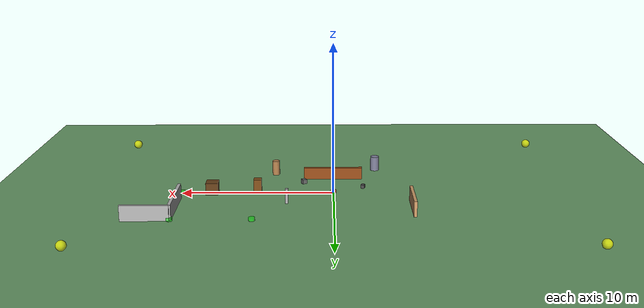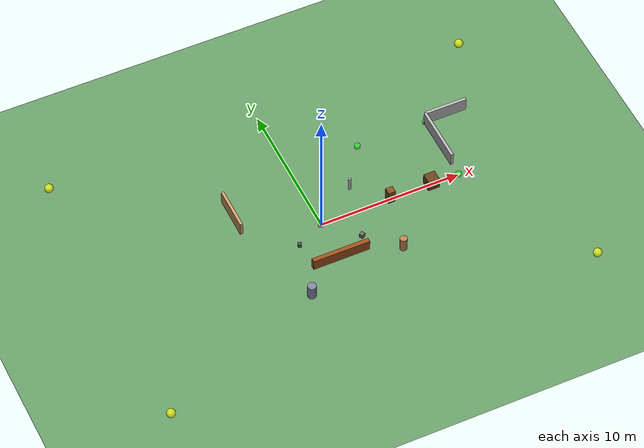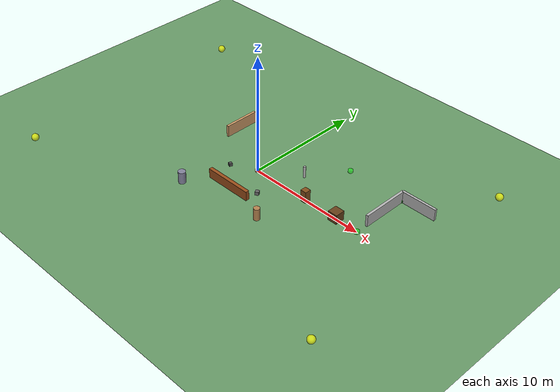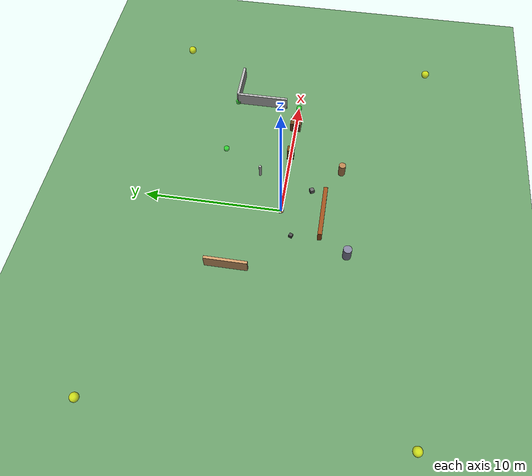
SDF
<?xml version="1.0" ?>
<sdf version="1.9">
  <world name="test_yard">

    <!-- Physics -->
    <physics name="1ms" type="ignored">
      <max_step_size>0.001</max_step_size>
      <real_time_factor>1</real_time_factor>
    </physics>

    <!-- Gazebo Harmonic plugins -->
    <plugin filename="gz-sim-physics-system" name="gz::sim::systems::Physics"/>
    <plugin filename="gz-sim-user-commands-system" name="gz::sim::systems::UserCommands"/>
    <plugin filename="gz-sim-scene-broadcaster-system" name="gz::sim::systems::SceneBroadcaster"/>
    <plugin filename="gz-sim-sensors-system" name="gz::sim::systems::Sensors">
      <render_engine>ogre</render_engine>
    </plugin>
    <plugin filename="gz-sim-imu-system" name="gz::sim::systems::Imu"/>
    <plugin filename="gz-sim-contact-system" name="gz::sim::systems::Contact"/>

    <!-- Lighting -->
    <light type="directional" name="sun">
      <cast_shadows>true</cast_shadows>
      <pose>0 0 10 0 0 0</pose>
      <diffuse>0.8 0.8 0.8 1</diffuse>
      <specular>0.2 0.2 0.2 1</specular>
      <attenuation>
        <range>1000</range>
        <constant>0.9</constant>
        <linear>0.01</linear>
        <quadratic>0.001</quadratic>
      </attenuation>
      <direction>-0.5 0.1 -0.9</direction>
    </light>

    <!-- Ground plane (grass texture) -->
    <model name="ground_plane">
      <static>true</static>
      <link name="link">
        <collision name="collision">
          <geometry>
            <plane>
              <normal>0 0 1</normal>
              <size>100 100</size>
            </plane>
          </geometry>
          <surface>
            <friction>
              <ode>
                <mu>0.8</mu>
                <mu2>0.8</mu2>
              </ode>
            </friction>
          </surface>
        </collision>
        <visual name="visual">
          <cast_shadows>false</cast_shadows>
          <geometry>
            <plane>
              <normal>0 0 1</normal>
              <size>100 100</size>
            </plane>
          </geometry>
          <material>
            <ambient>0.3 0.5 0.3 1</ambient>
            <diffuse>0.4 0.6 0.4 1</diffuse>
            <specular>0.1 0.1 0.1 1</specular>
          </material>
        </visual>
      </link>
    </model>

    <!-- Test obstacles for LiDAR and ultrasonic sensors -->

    <!-- Obstacle 1: Large box (simulating tree or large object) -->
    <model name="obstacle_tree">
      <pose>5 0 0.5 0 0 0</pose>
      <static>true</static>
      <link name="link">
        <collision name="collision">
          <geometry>
            <box>
              <size>0.5 0.5 1.0</size>
            </box>
          </geometry>
        </collision>
        <visual name="visual">
          <geometry>
            <box>
              <size>0.5 0.5 1.0</size>
            </box>
          </geometry>
          <material>
            <ambient>0.5 0.3 0.1 1</ambient>
            <diffuse>0.5 0.3 0.1 1</diffuse>
          </material>
        </visual>
      </link>
    </model>

    <!-- Obstacle 2: Narrow post (challenging for sensors) -->
    <model name="obstacle_post">
      <pose>3 2 0.5 0 0 0</pose>
      <static>true</static>
      <link name="link">
        <collision name="collision">
          <geometry>
            <cylinder>
              <radius>0.1</radius>
              <length>1.0</length>
            </cylinder>
          </geometry>
        </collision>
        <visual name="visual">
          <geometry>
            <cylinder>
              <radius>0.1</radius>
              <length>1.0</length>
            </cylinder>
          </geometry>
          <material>
            <ambient>0.7 0.7 0.7 1</ambient>
            <diffuse>0.7 0.7 0.7 1</diffuse>
          </material>
        </visual>
      </link>
    </model>

    <!-- Obstacle 3: Tall barrier wall (LiDAR detectable) -->
    <model name="obstacle_barrier">
      <pose>0 -3 0.4 0 0 0</pose>
      <static>true</static>
      <link name="link">
        <collision name="collision">
          <geometry>
            <box>
              <size>4.0 0.3 0.8</size>
            </box>
          </geometry>
        </collision>
        <visual name="visual">
          <geometry>
            <box>
              <size>4.0 0.3 0.8</size>
            </box>
          </geometry>
          <material>
            <ambient>0.6 0.3 0.1 1</ambient>
            <diffuse>0.6 0.3 0.1 1</diffuse>
          </material>
        </visual>
      </link>
    </model>

    <!-- Obstacle 3b: Additional tall pillar -->
    <model name="obstacle_pillar1">
      <pose>4 -4 0.5 0 0 0</pose>
      <static>true</static>
      <link name="link">
        <collision name="collision">
          <geometry>
            <cylinder>
              <radius>0.25</radius>
              <length>1.0</length>
            </cylinder>
          </geometry>
        </collision>
        <visual name="visual">
          <geometry>
            <cylinder>
              <radius>0.25</radius>
              <length>1.0</length>
            </cylinder>
          </geometry>
          <material>
            <ambient>0.7 0.5 0.3 1</ambient>
            <diffuse>0.7 0.5 0.3 1</diffuse>
          </material>
        </visual>
      </link>
    </model>

    <!-- Obstacle 3c: Another tall pillar -->
    <model name="obstacle_pillar2">
      <pose>-3 -5 0.5 0 0 0</pose>
      <static>true</static>
      <link name="link">
        <collision name="collision">
          <geometry>
            <cylinder>
              <radius>0.3</radius>
              <length>1.0</length>
            </cylinder>
          </geometry>
        </collision>
        <visual name="visual">
          <geometry>
            <cylinder>
              <radius>0.3</radius>
              <length>1.0</length>
            </cylinder>
          </geometry>
          <material>
            <ambient>0.5 0.5 0.6 1</ambient>
            <diffuse>0.5 0.5 0.6 1</diffuse>
          </material>
        </visual>
      </link>
    </model>

    <!-- Obstacle 4: Wall section (simulating fence or building) -->
    <model name="obstacle_wall">
      <pose>-5 3 0.5 0 0 0</pose>
      <static>true</static>
      <link name="link">
        <collision name="collision">
          <geometry>
            <box>
              <size>0.2 3.0 1.0</size>
            </box>
          </geometry>
        </collision>
        <visual name="visual">
          <geometry>
            <box>
              <size>0.2 3.0 1.0</size>
            </box>
          </geometry>
          <material>
            <ambient>0.8 0.6 0.4 1</ambient>
            <diffuse>0.8 0.6 0.4 1</diffuse>
          </material>
        </visual>
      </link>
    </model>

    <!-- Obstacle 5: Scattered rocks/debris -->
    <model name="obstacle_rock1">
      <pose>2 -2 0.15 0 0 0.5</pose>
      <static>true</static>
      <link name="link">
        <collision name="collision">
          <geometry>
            <box>
              <size>0.3 0.3 0.3</size>
            </box>
          </geometry>
        </collision>
        <visual name="visual">
          <geometry>
            <box>
              <size>0.3 0.3 0.3</size>
            </box>
          </geometry>
          <material>
            <ambient>0.4 0.4 0.4 1</ambient>
            <diffuse>0.4 0.4 0.4 1</diffuse>
          </material>
        </visual>
      </link>
    </model>

    <model name="obstacle_rock2">
      <pose>-2 -1 0.12 0 0 1.2</pose>
      <static>true</static>
      <link name="link">
        <collision name="collision">
          <geometry>
            <box>
              <size>0.25 0.25 0.25</size>
            </box>
          </geometry>
        </collision>
        <visual name="visual">
          <geometry>
            <box>
              <size>0.25 0.25 0.25</size>
            </box>
          </geometry>
          <material>
            <ambient>0.3 0.3 0.3 1</ambient>
            <diffuse>0.3 0.3 0.3 1</diffuse>
          </material>
        </visual>
      </link>
    </model>

    <!-- Tall box obstacle for testing avoidance -->
    <model name="obstacle_crate">
      <pose>8 0 0.4 0 0 0</pose>
      <static>true</static>
      <link name="link">
        <collision name="collision">
          <geometry>
            <box>
              <size>0.8 0.8 0.8</size>
            </box>
          </geometry>
        </collision>
        <visual name="visual">
          <geometry>
            <box>
              <size>0.8 0.8 0.8</size>
            </box>
          </geometry>
          <material>
            <ambient>0.4 0.25 0.1 1</ambient>
            <diffuse>0.4 0.25 0.1 1</diffuse>
          </material>
        </visual>
      </link>
    </model>

    <!-- L-shaped wall for testing corner navigation -->
    <model name="obstacle_wall_L1">
      <pose>10 3 0.5 0 0 0</pose>
      <static>true</static>
      <link name="link">
        <collision name="collision">
          <geometry>
            <box>
              <size>0.2 4.0 1.0</size>
            </box>
          </geometry>
        </collision>
        <visual name="visual">
          <geometry>
            <box>
              <size>0.2 4.0 1.0</size>
            </box>
          </geometry>
          <material>
            <ambient>0.7 0.7 0.7 1</ambient>
            <diffuse>0.7 0.7 0.7 1</diffuse>
          </material>
        </visual>
      </link>
    </model>

    <model name="obstacle_wall_L2">
      <pose>11.5 5 0.5 0 0 0</pose>
      <static>true</static>
      <link name="link">
        <collision name="collision">
          <geometry>
            <box>
              <size>3.0 0.2 1.0</size>
            </box>
          </geometry>
        </collision>
        <visual name="visual">
          <geometry>
            <box>
              <size>3.0 0.2 1.0</size>
            </box>
          </geometry>
          <material>
            <ambient>0.7 0.7 0.7 1</ambient>
            <diffuse>0.7 0.7 0.7 1</diffuse>
          </material>
        </visual>
      </link>
    </model>

    <!-- GPS waypoint markers (visual only, for reference) -->
    <model name="waypoint_1">
      <pose>10 0 0.1 0 0 0</pose>
      <static>true</static>
      <link name="link">
        <visual name="visual">
          <geometry>
            <cylinder>
              <radius>0.2</radius>
              <length>0.2</length>
            </cylinder>
          </geometry>
          <material>
            <ambient>0 1 0 0.5</ambient>
            <diffuse>0 1 0 0.5</diffuse>
          </material>
        </visual>
      </link>
    </model>

    <model name="waypoint_2">
      <pose>10 5 0.1 0 0 0</pose>
      <static>true</static>
      <link name="link">
        <visual name="visual">
          <geometry>
            <cylinder>
              <radius>0.2</radius>
              <length>0.2</length>
            </cylinder>
          </geometry>
          <material>
            <ambient>0 1 0 0.5</ambient>
            <diffuse>0 1 0 0.5</diffuse>
          </material>
        </visual>
      </link>
    </model>

    <model name="waypoint_3">
      <pose>5 5 0.1 0 0 0</pose>
      <static>true</static>
      <link name="link">
        <visual name="visual">
          <geometry>
            <cylinder>
              <radius>0.2</radius>
              <length>0.2</length>
            </cylinder>
          </geometry>
          <material>
            <ambient>0 1 0 0.5</ambient>
            <diffuse>0 1 0 0.5</diffuse>
          </material>
        </visual>
      </link>
    </model>

    <model name="waypoint_4">
      <pose>0 0 0.1 0 0 0</pose>
      <static>true</static>
      <link name="link">
        <visual name="visual">
          <geometry>
            <cylinder>
              <radius>0.2</radius>
              <length>0.2</length>
            </cylinder>
          </geometry>
          <material>
            <ambient>1 0 0 0.5</ambient>
            <diffuse>1 0 0 0.5</diffuse>
          </material>
        </visual>
      </link>
    </model>

    <!-- Geofence boundary markers (for testing geofence logic) -->
    <model name="geofence_corner_ne">
      <pose>15 10 0.5 0 0 0</pose>
      <static>true</static>
      <link name="link">
        <visual name="visual">
          <geometry>
            <sphere>
              <radius>0.3</radius>
            </sphere>
          </geometry>
          <material>
            <ambient>1 1 0 0.7</ambient>
            <diffuse>1 1 0 0.7</diffuse>
          </material>
        </visual>
      </link>
    </model>

    <model name="geofence_corner_nw">
      <pose>-15 10 0.5 0 0 0</pose>
      <static>true</static>
      <link name="link">
        <visual name="visual">
          <geometry>
            <sphere>
              <radius>0.3</radius>
            </sphere>
          </geometry>
          <material>
            <ambient>1 1 0 0.7</ambient>
            <diffuse>1 1 0 0.7</diffuse>
          </material>
        </visual>
      </link>
    </model>

    <model name="geofence_corner_se">
      <pose>15 -10 0.5 0 0 0</pose>
      <static>true</static>
      <link name="link">
        <visual name="visual">
          <geometry>
            <sphere>
              <radius>0.3</radius>
            </sphere>
          </geometry>
          <material>
            <ambient>1 1 0 0.7</ambient>
            <diffuse>1 1 0 0.7</diffuse>
          </material>
        </visual>
      </link>
    </model>

    <model name="geofence_corner_sw">
      <pose>-15 -10 0.5 0 0 0</pose>
      <static>true</static>
      <link name="link">
        <visual name="visual">
          <geometry>
            <sphere>
              <radius>0.3</radius>
            </sphere>
          </geometry>
          <material>
            <ambient>1 1 0 0.7</ambient>
            <diffuse>1 1 0 0.7</diffuse>
          </material>
        </visual>
      </link>
    </model>

  </world>
</sdf>
